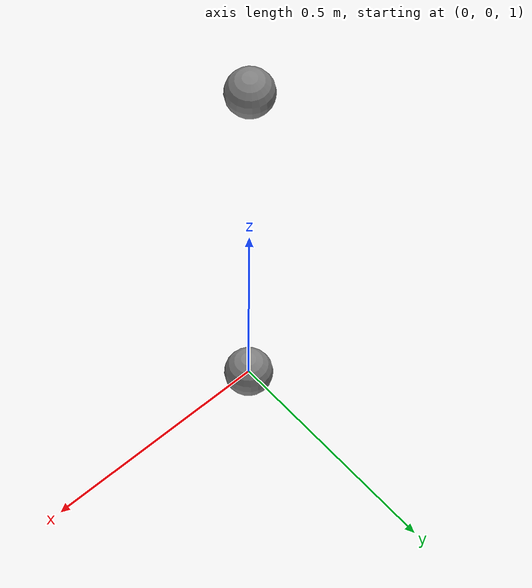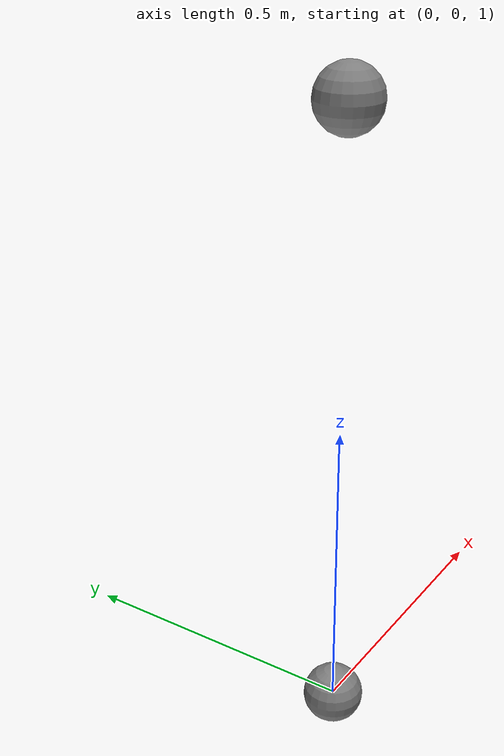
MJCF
<mujoco model="t29">
            <option gravity="0 0 -10"/>
            <worldbody>
                <body name="b_ref" pos="0 0 1">
                    <joint type="free"/>
                    <geom type="sphere" size="0.05" mass="1"/>
                </body>
                <body name="b1" pos="0 0 2">
                    <joint name="j1" type="hinge" axis="0 0 1"/>
                    <geom type="sphere" size="0.05" mass="1"/>
                    <site name="s1" pos="0 0 0"/>
                </body>
            </worldbody>
            <sensor>
                <framelinacc site="s1" reftype="xbody" refname="b_ref"/>
                <framelinacc site="s1"/>
                <frameangacc site="s1" reftype="xbody" refname="b_ref"/>
                <frameangacc site="s1"/>
            </sensor>
        </mujoco>
